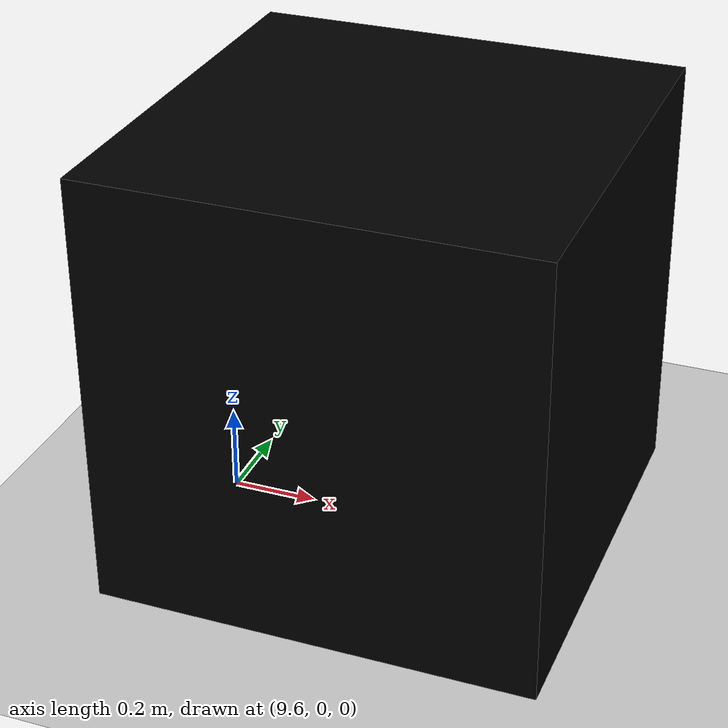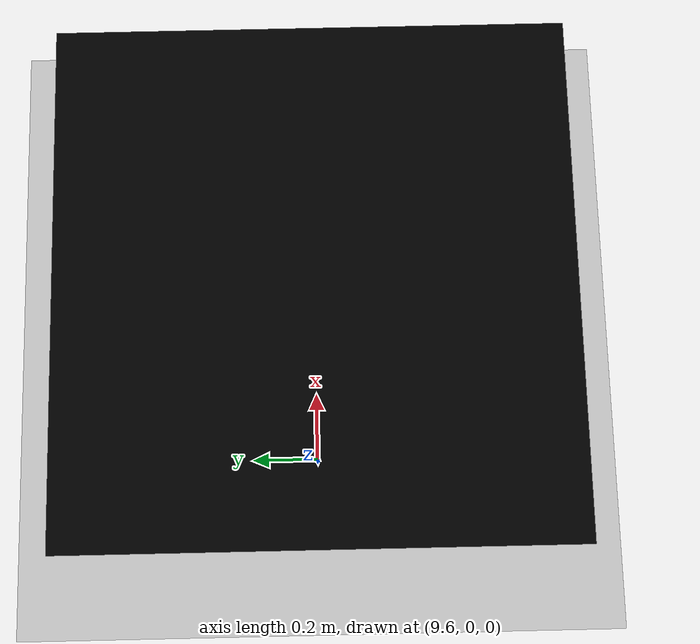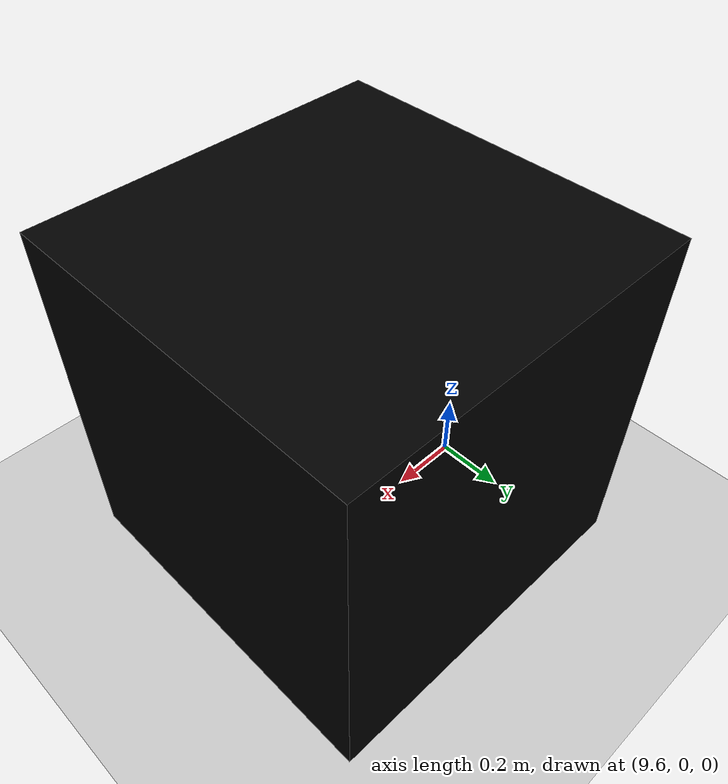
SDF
<?xml version="1.0"?>
<sdf version="1.6">
  <world name="my_world">
    <physics name="1ms" type="ignored">
      <max_step_size>0.001</max_step_size>
      <real_time_factor>1.0</real_time_factor>
    </physics>
    <plugin
      filename="gz-sim-physics-system"
      name="gz::sim::systems::Physics">
    </plugin>
    <plugin
      filename="gz-sim-user-commands-system"
      name="gz::sim::systems::UserCommands">
    </plugin>
    <plugin
      filename="gz-sim-scene-broadcaster-system"
      name="gz::sim::systems::SceneBroadcaster">
    </plugin>
    <plugin
      filename="gz-sim-contact-system"
      name="gz::sim::systems::Contact">
    </plugin>
    <plugin
      filename="gz-sim-imu-system"
      name="gz::sim::systems::Imu">
    </plugin>
    <plugin
      filename="gz-sim-sensors-system"
      name="gz::sim::systems::Sensors">
      <render_engine>ogre2</render_engine>
    </plugin>
    <light type="directional" name="sun">
      <cast_shadows>true</cast_shadows>
      <pose>0 0 10 0 0 0</pose>
      <diffuse>1 1 1 1</diffuse>
      <specular>0.5 0.5 0.5 1</specular>
      <attenuation>
        <range>1000</range>
        <constant>0.9</constant>
        <linear>0.01</linear>
        <quadratic>0.001</quadratic>
      </attenuation>
      <direction>-0.5 0.1 -0.9</direction>
    </light>

    <model name="ground_plane">
      <static>true</static>
      <link name="link">
        <collision name="collision">
          <geometry>
            <plane>
              <normal>0 0 1</normal>
              <size>100 100</size>
            </plane>
          </geometry>
        </collision>
        <visual name="visual">
          <geometry>
            <plane>
              <normal>0 0 1</normal>
              <size>100 100</size>
            </plane>
          </geometry>
          <material>
            <ambient>0.8 0.8 0.8 1</ambient>
            <diffuse>0.8 0.8 0.8 1</diffuse>
            <specular>0.8 0.8 0.8 1</specular>
          </material>
        </visual>
      </link>
    </model>

    <include>
        <pose>10 0 0.5 0 0 0</pose>
        <uri>model://green_box</uri>
      </include>

  </world>
</sdf>

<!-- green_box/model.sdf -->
<sdf version="1.5">
  <model name="green_simple_box">
    <pose>0 0 0.5 0 0 0</pose>
    <static>true</static>
    <link name="link">
      <inertial>
        <mass>1.0</mass>
        <inertia> <!-- inertias are tricky to compute -->
          <!-- http://gazebosim.org/tutorials?tut=inertia&cat=build_robot -->
          <ixx>0.083</ixx>       <!-- for a box: ixx = 0.083 * mass * (y*y + z*z) -->
          <ixy>0.0</ixy>         <!-- for a box: ixy = 0 -->
          <ixz>0.0</ixz>         <!-- for a box: ixz = 0 -->
          <iyy>0.083</iyy>       <!-- for a box: iyy = 0.083 * mass * (x*x + z*z) -->
          <iyz>0.0</iyz>         <!-- for a box: iyz = 0 -->
          <izz>0.083</izz>       <!-- for a box: izz = 0.083 * mass * (x*x + y*y) -->
        </inertia>
      </inertial>
      <collision name="collision">
        <geometry>
          <box>
            <size>1 1 1</size>
          </box>
        </geometry>
      </collision>
      <visual name="visual">
        <cast_shadows>false</cast_shadows>
        <geometry>
          <box>
            <size>1 1 1</size>
          </box>
        </geometry>
        <material> <!-- LED material -->
            <ambient>0 0 0 1</ambient>
            <diffuse>0 0 0 1</diffuse>
            <specular>0 0 0 0</specular>
            <emissive>0 1 0 1</emissive>
        </material>
      </visual>
    </link>
  </model>
</sdf>
